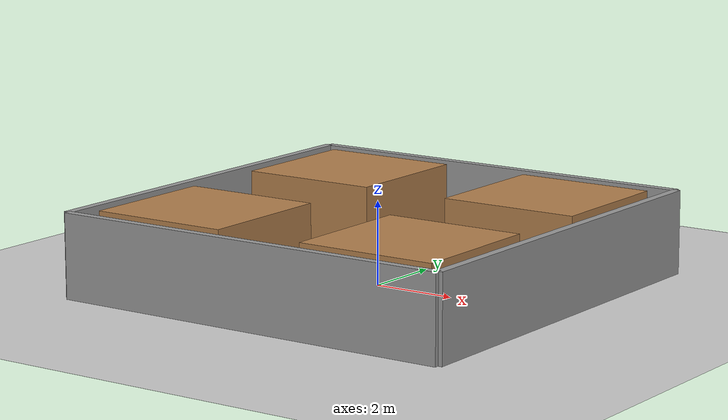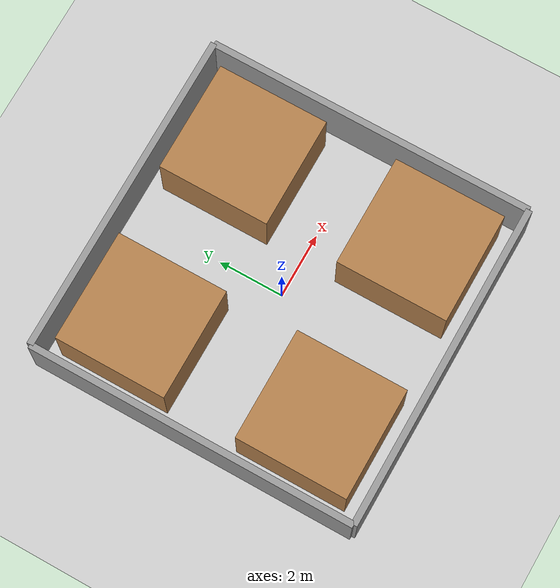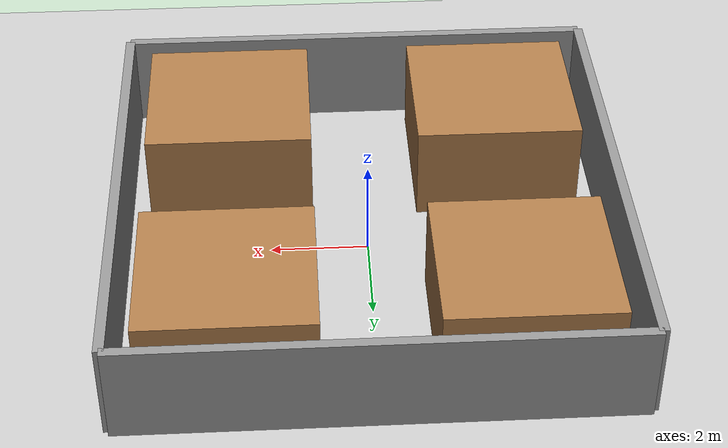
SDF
<?xml version="1.0" ?>
<sdf version="1.6">
  <world name="warehouse_world">
    <physics type="ode">
      <max_step_size>0.005</max_step_size>
      <real_time_factor>1.0</real_time_factor>
      <real_time_update_rate>200</real_time_update_rate>
    </physics>
    <!-- A global light source -->
    <include>
      <uri>model://sun</uri>
    </include>
    <!-- A ground plane -->
    <include>
      <uri>model://ground_plane</uri>
    </include>

    <!-- Outer walls -->
    <model name="outer_walls">
      <static>true</static>
      <link name="link">
        <collision name="wall_n">
          <pose>0 5 1 0 0 0</pose>
          <geometry><box><size>10 0.2 2</size></box></geometry>
        </collision>
        <visual name="wall_n_visual">
          <pose>0 5 1 0 0 0</pose>
          <geometry><box><size>10 0.2 2</size></box></geometry>
          <material><script><name>Gazebo/Grey</name></script></material>
        </visual>

        <collision name="wall_s">
          <pose>0 -5 1 0 0 0</pose>
          <geometry><box><size>10 0.2 2</size></box></geometry>
        </collision>
        <visual name="wall_s_visual">
          <pose>0 -5 1 0 0 0</pose>
          <geometry><box><size>10 0.2 2</size></box></geometry>
          <material><script><name>Gazebo/Grey</name></script></material>
        </visual>

        <collision name="wall_e">
          <pose>5 0 1 0 0 0</pose>
          <geometry><box><size>0.2 10 2</size></box></geometry>
        </collision>
        <visual name="wall_e_visual">
          <pose>5 0 1 0 0 0</pose>
          <geometry><box><size>0.2 10 2</size></box></geometry>
          <material><script><name>Gazebo/Grey</name></script></material>
        </visual>

        <collision name="wall_w">
          <pose>-5 0 1 0 0 0</pose>
          <geometry><box><size>0.2 10 2</size></box></geometry>
        </collision>
        <visual name="wall_w_visual">
          <pose>-5 0 1 0 0 0</pose>
          <geometry><box><size>0.2 10 2</size></box></geometry>
          <material><script><name>Gazebo/Grey</name></script></material>
        </visual>
      </link>
    </model>

    <scene>
      <shadows>false</shadows>
    </scene>

    <!-- Warehouse Shelf Blocks creating a 4-way Central Conflict Intersection at (0, 0) -->
    <!-- North-South corridor (x: -1.1 to 1.1) and East-West corridor (y: -1.1 to 1.1) -->
    <model name="warehouse_shelf_blocks">
      <static>true</static>
      <link name="link">
        <!-- Northwest Block -->
        <collision name="block_nw">
          <pose>-2.8 2.8 1.0 0 0 0</pose>
          <geometry><box><size>3.4 3.4 2.0</size></box></geometry>
        </collision>
        <visual name="block_nw_visual">
          <pose>-2.8 2.8 1.0 0 0 0</pose>
          <geometry><box><size>3.4 3.4 2.0</size></box></geometry>
          <material><script><name>Gazebo/Wood</name></script></material>
        </visual>

        <!-- Northeast Block -->
        <collision name="block_ne">
          <pose>2.8 2.8 1.0 0 0 0</pose>
          <geometry><box><size>3.4 3.4 2.0</size></box></geometry>
        </collision>
        <visual name="block_ne_visual">
          <pose>2.8 2.8 1.0 0 0 0</pose>
          <geometry><box><size>3.4 3.4 2.0</size></box></geometry>
          <material><script><name>Gazebo/Wood</name></script></material>
        </visual>

        <!-- Southwest Block -->
        <collision name="block_sw">
          <pose>-2.8 -2.8 1.0 0 0 0</pose>
          <geometry><box><size>3.4 3.4 2.0</size></box></geometry>
        </collision>
        <visual name="block_sw_visual">
          <pose>-2.8 -2.8 1.0 0 0 0</pose>
          <geometry><box><size>3.4 3.4 2.0</size></box></geometry>
          <material><script><name>Gazebo/Wood</name></script></material>
        </visual>

        <!-- Southeast Block -->
        <collision name="block_se">
          <pose>2.8 -2.8 1.0 0 0 0</pose>
          <geometry><box><size>3.4 3.4 2.0</size></box></geometry>
        </collision>
        <visual name="block_se_visual">
          <pose>2.8 -2.8 1.0 0 0 0</pose>
          <geometry><box><size>3.4 3.4 2.0</size></box></geometry>
          <material><script><name>Gazebo/Wood</name></script></material>
        </visual>
      </link>
    </model>

  </world>
</sdf>
